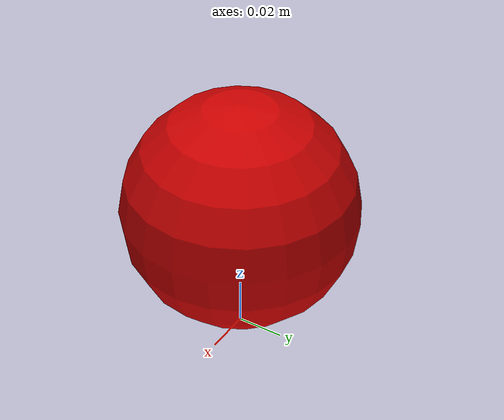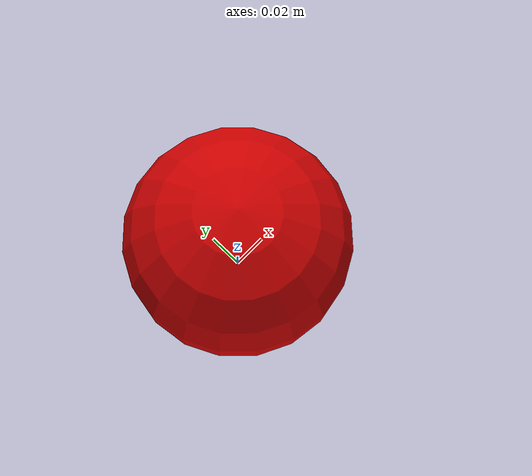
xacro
<?xml version="1.0" encoding="utf-8"?>
<robot name="sim_pusher" xmlns:xacro="http://wiki.ros.org/xacro">
  <material name="red">
    <color rgba="0.8 0.0 0.0 1.0"/>
  </material>
  <material name="black">
    <color rgba="0.0 0.0 0.0 1.0"/>
  </material>

  <link name="base_link">
	 <inertial>
     <mass value="1.0"/>
     <inertia ixx="1.0" ixy="0" ixz="0" iyy="1.0" iyz="0" izz="1.0"/>
     <origin rpy="0 0 0" xyz="0 0 0"/>
    </inertial>
  </link>

	<joint name="pusher_joint_x" type="prismatic">
    <parent link="base_link"/>
    <child link="dummy_link"/>
    <axis xyz="1 0 0"/>
    <origin rpy="0 0 0" xyz="0 0 0.06"/>
    <limit effort="0" velocity="1000.0"/>
  </joint>

	<link name="dummy_link">
	 <inertial>
     <mass value="1.0"/>
     <inertia ixx="1.0" ixy="0" ixz="0" iyy="1.0" iyz="0" izz="1.0"/>
     <origin rpy="0 0 0" xyz="0 0 0"/>
    </inertial>
  </link>

	<joint name="pusher_joint_y" type="prismatic">
    <parent link="dummy_link"/>
    <child link="pusher_link"/>
    <axis xyz="0 1 0"/>
    <origin rpy="0 0 0" xyz="0 0 0"/>
    <limit effort="0" velocity="1000.0"/>
  </joint>

  <link name="pusher_link">
    <inertial>
      <origin rpy="0 0 0" xyz="0 0 0"/>
      <mass value="1"/>
      <inertia ixx="1"  ixy="0"  ixz="0" iyy="1" iyz="0" izz="1" />
    </inertial>

    <visual>
      <origin rpy="0 0 0" xyz="0 0 0"/>
      <geometry>
        <sphere radius="0.05"/>
      </geometry>
      <material name="red"/>
    </visual>

    <collision>
      <origin rpy="0 0 0" xyz="0 0 0"/>
      <geometry>
        <sphere radius="0.05"/>
      </geometry>
    </collision>
  </link>

</robot>
